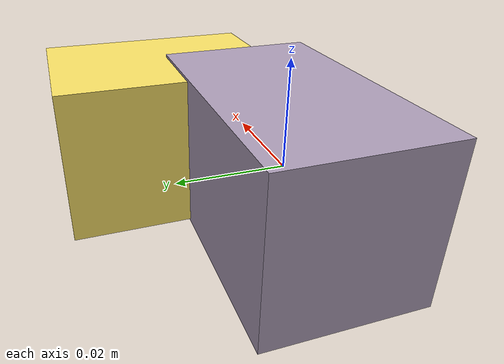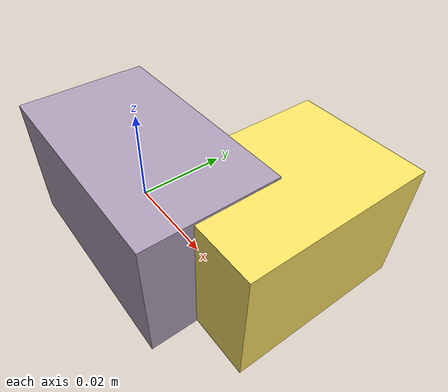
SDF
<sdf version="1.4"><world name="default"><model name="object0"><link name="link1"><pose>0 0 0 0 0 0</pose><inertial><pose>0 0 0 0 0 0</pose><mass>0.02730189069410879</mass><inertia><ixx>4.095283604116318e-06</ixx><ixy>0</ixy><iyy>7.863441024455763e-06</iyy><ixz>0</ixz><iyz>0</iyz><izz>7.863441024455763e-06</izz></inertia></inertial><visual name="link1_visual"><pose>0 0  0 0 0 0</pose><geometry><box><size>0.05055905684094221 0.03 0.03</size></box></geometry><material><diffuse>0.6750297912527625 0.6154175443989361 0.7138892079838398 1</diffuse></material></visual><collision><pose>0 0  0 0 0 0</pose><geometry><box><size>0.05055905684094221 0.03 0.03</size></box></geometry></collision></link><link name="link2"><pose>0.02445122064820896 0.016805745451907113 0 0 0 0</pose><inertial><pose>0 0 0 0 0 0</pose><mass>0.022678263605609237</mass><inertia><ixx>4.9225626163915656e-06</ixx><ixy>0</ixy><iyy>3.290238078113806e-06</iyy><ixz>0</ixz><iyz>0</iyz><izz>5.034064079119145e-06</izz></inertia></inertial><visual name="link2_visual"><pose>0 0  0 0 0 0</pose><geometry><box><size>0.03 0.04199678445483193 0.028999999999999998</size></box></geometry><material><diffuse>0.9735899118727425 0.8805421837394596 0.3933326300011158 1</diffuse></material></visual><collision><pose>0 0  0 0 0 0</pose><geometry><box><size>0.03 0.04199678445483193 0.028999999999999998</size></box></geometry></collision></link><joint name="link_joint_0" type="fixed"><parent>link1</parent><child>link2</child><pose>0 0 0 0 0 0</pose><axis><xyz>0 0 1</xyz></axis></joint></model></world></sdf>
